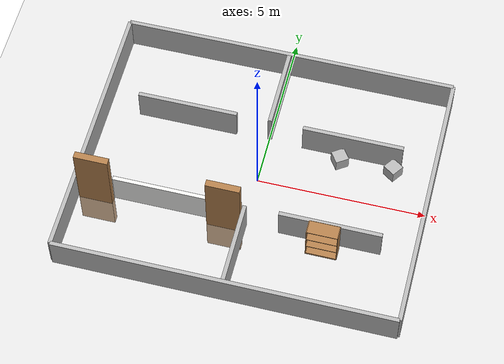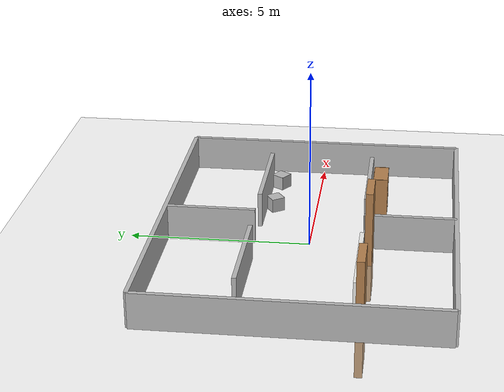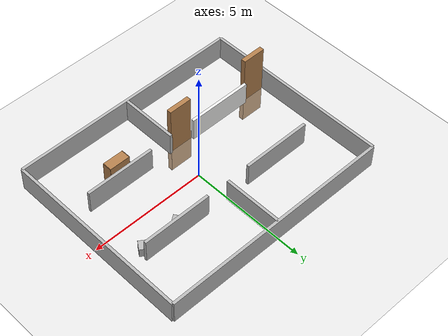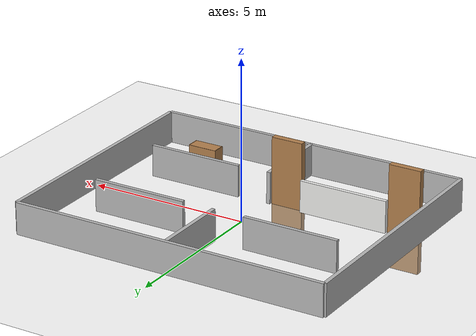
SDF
<sdf version="1.7">
 <world name="house_v1">
  <light name="sun" type="directional">
   <pose>0 0 10 0 -0 0</pose>
   <diffuse>0.8 0.8 0.8 1</diffuse>
   <specular>0.2 0.2 0.2 1</specular>
   <attenuation>
    <range>1000</range>
    <constant>0.9</constant>
    <linear>0.01</linear>
    <quadratic>0.001</quadratic>
   </attenuation>
   <direction>-0.5 0.1 -0.9</direction>
   <spot><inner_angle>0</inner_angle><outer_angle>0</outer_angle><falloff>0</falloff></spot>
  </light>
  <model name="ground_plane">
   <static>1</static>
   <link name="link">
    <collision name="collision">
     <geometry><plane><normal>0 0 1</normal><size>100 100</size></plane></geometry>
     <surface>
      <contact><collide_bitmask>65535</collide_bitmask></contact>
      <friction><ode><mu>100</mu><mu2>50</mu2></ode></friction>
     </surface>
    </collision>
    <visual name="visual">
     <cast_shadows>0</cast_shadows>
     <geometry><plane><normal>0 0 1</normal><size>100 100</size></plane></geometry>
     <material>
      <script><uri>file://media/materials/scripts/gazebo.material</uri><name>Gazebo/Grey</name></script>
     </material>
    </visual>
   </link>
  </model>
  <model name="outer_north">
   <static>1</static>
   <pose>0 4 0.5 0 -0 0</pose>
   <link name="link">
    <collision name="collision"><geometry><box><size>10 0.12 1</size></box></geometry></collision>
    <visual name="visual"><geometry><box><size>10 0.12 1</size></box></geometry></visual>
   </link>
  </model>
  <model name="outer_south">
   <static>1</static>
   <pose>0 -4 0.5 0 -0 0</pose>
   <link name="link">
    <collision name="collision"><geometry><box><size>10 0.12 1</size></box></geometry></collision>
    <visual name="visual"><geometry><box><size>10 0.12 1</size></box></geometry></visual>
   </link>
  </model>
  <model name="outer_east">
   <static>1</static>
   <pose>5 0 0.5 0 -0 0</pose>
   <link name="link">
    <collision name="collision"><geometry><box><size>0.12 8 1</size></box></geometry></collision>
    <visual name="visual"><geometry><box><size>0.12 8 1</size></box></geometry></visual>
   </link>
  </model>
  <model name="outer_west">
   <static>1</static>
   <pose>-5 0 0.5 0 -0 0</pose>
   <link name="link">
    <collision name="collision"><geometry><box><size>0.12 8 1</size></box></geometry></collision>
    <visual name="visual"><geometry><box><size>0.12 8 1</size></box></geometry></visual>
   </link>
  </model>
  <model name="inner_north_left">
   <static>1</static>
   <pose>-2.5 1.5 0.5 0 -0 0</pose>
   <link name="link">
    <collision name="collision"><geometry><box><size>3 0.12 1</size></box></geometry></collision>
    <visual name="visual"><geometry><box><size>3 0.12 1</size></box></geometry></visual>
   </link>
  </model>
  <model name="inner_north_right">
   <static>1</static>
   <pose>2.5 1.5 0.5 0 -0 0</pose>
   <link name="link">
    <collision name="collision"><geometry><box><size>3 0.12 1</size></box></geometry></collision>
    <visual name="visual"><geometry><box><size>3 0.12 1</size></box></geometry></visual>
   </link>
  </model>
  <model name="inner_south_right">
   <static>1</static>
   <pose>2.5 -1.5 0.5 0 -0 0</pose>
   <link name="link">
    <collision name="collision"><geometry><box><size>3 0.12 1</size></box></geometry></collision>
    <visual name="visual"><geometry><box><size>3 0.12 1</size></box></geometry></visual>
   </link>
  </model>
  <model name="inner_center_top">
   <static>1</static>
   <pose>0 2.75 0.5 0 -0 0</pose>
   <link name="link">
    <collision name="collision"><geometry><box><size>0.12 2.5 1</size></box></geometry></collision>
    <visual name="visual"><geometry><box><size>0.12 2.5 1</size></box></geometry></visual>
   </link>
  </model>
  <model name="inner_center_bottom">
   <static>1</static>
   <pose>0 -2.75 0.5 0 -0 0</pose>
   <link name="link">
    <collision name="collision"><geometry><box><size>0.12 2.5 1</size></box></geometry></collision>
    <visual name="visual"><geometry><box><size>0.12 2.5 1</size></box></geometry></visual>
   </link>
  </model>
  <model name="chair_1">
   <static>1</static>
   <pose>2.2 1.2 0.2 0 -0 0.6</pose>
   <link name="link">
    <collision name="collision"><geometry><box><size>0.4 0.4 0.4</size></box></geometry></collision>
    <visual name="visual"><geometry><box><size>0.4 0.4 0.4</size></box></geometry></visual>
   </link>
  </model>
  <model name="chair_2">
   <static>1</static>
   <pose>3.8 1.2 0.2 0 0 -0.6</pose>
   <link name="link">
    <collision name="collision"><geometry><box><size>0.4 0.4 0.4</size></box></geometry></collision>
    <visual name="visual"><geometry><box><size>0.4 0.4 0.4</size></box></geometry></visual>
   </link>
  </model>
  <gravity>0 0 -9.8</gravity>
  <magnetic_field>6e-06 2.3e-05 -4.2e-05</magnetic_field>
  <atmosphere type="adiabatic"/>
  <physics type="ode">
   <max_step_size>0.001</max_step_size>
   <real_time_factor>1</real_time_factor>
   <real_time_update_rate>1000</real_time_update_rate>
  </physics>
  <scene><ambient>0.4 0.4 0.4 1</ambient><background>0.7 0.7 0.7 1</background><shadows>1</shadows></scene>
  <spherical_coordinates>
   <surface_model>EARTH_WGS84</surface_model>
   <latitude_deg>0</latitude_deg>
   <longitude_deg>0</longitude_deg>
   <elevation>0</elevation>
   <heading_deg>0</heading_deg>
  </spherical_coordinates>
  <model name="inner_south_left_0">
   <link name="link">
    <pose>0.051519 0 0 0 -0 0</pose>
    <inertial>
     <mass>1</mass>
     <inertia><ixx>1</ixx><ixy>0</ixy><ixz>0</ixz><iyy>1</iyy><iyz>0</iyz><izz>1</izz></inertia>
    </inertial>
    <visual name="visual">
     <geometry><box><size>2.8 0.12 1</size></box></geometry>
     <material>
      <shader type="pixel"><normal_map>__default__</normal_map></shader>
      <script><name>ModelPreview_25::link::visual_MATERIAL_</name><uri>__default__</uri></script>
      <ambient>0.933 0.933 0.925 1</ambient>
      <diffuse>0.933 0.933 0.925 1</diffuse>
      <specular>0.933 0.933 0.925 1</specular>
      <emissive>0 0 0 1</emissive>
     </material>
    </visual>
    <collision name="collision">
     <geometry><box><size>3 0.12 1</size></box></geometry>
     <surface>
      <friction>
       <ode><mu>1</mu><mu2>1</mu2><fdir1>0 0 0</fdir1><slip1>0</slip1><slip2>0</slip2></ode>
       <torsional>
        <coefficient>1</coefficient>
        <patch_radius>0</patch_radius>
        <surface_radius>0</surface_radius>
        <use_patch_radius>1</use_patch_radius>
        <ode><slip>0</slip></ode>
       </torsional>
      </friction>
      <bounce><restitution_coefficient>0</restitution_coefficient><threshold>1e+06</threshold></bounce>
      <contact>
       <collide_without_contact>0</collide_without_contact>
       <collide_without_contact_bitmask>1</collide_without_contact_bitmask>
       <collide_bitmask>1</collide_bitmask>
       <ode>
        <soft_cfm>0</soft_cfm>
        <soft_erp>0.2</soft_erp>
        <kp>1e+13</kp>
        <kd>1</kd>
        <max_vel>0.01</max_vel>
        <min_depth>0</min_depth>
       </ode>
       <bullet>
        <split_impulse>1</split_impulse>
        <split_impulse_penetration_threshold>-0.01</split_impulse_penetration_threshold>
        <soft_cfm>0</soft_cfm>
        <soft_erp>0.2</soft_erp>
        <kp>1e+13</kp>
        <kd>1</kd>
       </bullet>
      </contact>
     </surface>
    </collision>
   </link>
   <static>1</static>
   <pose>-2.5534 -1.50675 0.5 0 -0 0</pose>
  </model>
  <model name="unit_box">
   <link name="link">
    <inertial>
     <mass>1</mass>
     <inertia>
      <ixx>0.166667</ixx>
      <ixy>0</ixy>
      <ixz>0</ixz>
      <iyy>0.166667</iyy>
      <iyz>0</iyz>
      <izz>0.166667</izz>
     </inertia>
    </inertial>
    <pose>0.001519 -0.93195 0 0 -0 0</pose>
    <visual name="visual">
     <geometry><box><size>1 0.2 3.2</size></box></geometry>
     <material>
      <script><name>Gazebo/Wood</name><uri>file://media/materials/scripts/gazebo.material</uri></script>
      <shader type="pixel"><normal_map>__default__</normal_map></shader>
      <ambient>0.3 0.3 0.3 1</ambient>
      <diffuse>0.7 0.7 0.7 1</diffuse>
      <specular>0.01 0.01 0.01 1</specular>
      <emissive>0 0 0 1</emissive>
     </material>
    </visual>
    <collision name="collision">
     <geometry><box><size>1 0.2 3.2</size></box></geometry>
     <surface>
      <friction>
       <ode><mu>1</mu><mu2>1</mu2><fdir1>0 0 0</fdir1><slip1>0</slip1><slip2>0</slip2></ode>
       <torsional>
        <coefficient>1</coefficient>
        <patch_radius>0</patch_radius>
        <surface_radius>0</surface_radius>
        <use_patch_radius>1</use_patch_radius>
        <ode><slip>0</slip></ode>
       </torsional>
      </friction>
      <bounce><restitution_coefficient>0</restitution_coefficient><threshold>1e+06</threshold></bounce>
      <contact>
       <collide_without_contact>0</collide_without_contact>
       <collide_without_contact_bitmask>1</collide_without_contact_bitmask>
       <collide_bitmask>1</collide_bitmask>
       <ode>
        <soft_cfm>0</soft_cfm>
        <soft_erp>0.2</soft_erp>
        <kp>1e+13</kp>
        <kd>1</kd>
        <max_vel>0.01</max_vel>
        <min_depth>0</min_depth>
       </ode>
       <bullet>
        <split_impulse>1</split_impulse>
        <split_impulse_penetration_threshold>-0.01</split_impulse_penetration_threshold>
        <soft_cfm>0</soft_cfm>
        <soft_erp>0.2</soft_erp>
        <kp>1e+13</kp>
        <kd>1</kd>
       </bullet>
      </contact>
     </surface>
    </collision>
   </link>
   <static>1</static>
   <pose>-0.573577 -0.743162 0.5 0 -0 0</pose>
  </model>
  <model name="unit_box_clone">
   <link name="link">
    <inertial>
     <mass>1</mass>
     <inertia>
      <ixx>0.166667</ixx>
      <ixy>0</ixy>
      <ixz>0</ixz>
      <iyy>0.166667</iyy>
      <iyz>0</iyz>
      <izz>0.166667</izz>
     </inertia>
    </inertial>
    <pose>0.001519 -0.93195 0 0 -0 0</pose>
    <visual name="visual">
     <geometry><box><size>1 0.2 3.2</size></box></geometry>
     <material>
      <script><name>Gazebo/Wood</name><uri>file://media/materials/scripts/gazebo.material</uri></script>
      <shader type="pixel"><normal_map>__default__</normal_map></shader>
      <ambient>0.3 0.3 0.3 1</ambient>
      <diffuse>0.7 0.7 0.7 1</diffuse>
      <specular>0.01 0.01 0.01 1</specular>
      <emissive>0 0 0 1</emissive>
     </material>
    </visual>
    <collision name="collision">
     <geometry><box><size>1 0.2 3.2</size></box></geometry>
     <surface>
      <friction>
       <ode><mu>1</mu><mu2>1</mu2><fdir1>0 0 0</fdir1><slip1>0</slip1><slip2>0</slip2></ode>
       <torsional>
        <coefficient>1</coefficient>
        <patch_radius>0</patch_radius>
        <surface_radius>0</surface_radius>
        <use_patch_radius>1</use_patch_radius>
        <ode><slip>0</slip></ode>
       </torsional>
      </friction>
      <bounce><restitution_coefficient>0</restitution_coefficient><threshold>1e+06</threshold></bounce>
      <contact>
       <collide_without_contact>0</collide_without_contact>
       <collide_without_contact_bitmask>1</collide_without_contact_bitmask>
       <collide_bitmask>1</collide_bitmask>
       <ode>
        <soft_cfm>0</soft_cfm>
        <soft_erp>0.2</soft_erp>
        <kp>1e+13</kp>
        <kd>1</kd>
        <max_vel>0.01</max_vel>
        <min_depth>0</min_depth>
       </ode>
       <bullet>
        <split_impulse>1</split_impulse>
        <split_impulse_penetration_threshold>-0.01</split_impulse_penetration_threshold>
        <soft_cfm>0</soft_cfm>
        <soft_erp>0.2</soft_erp>
        <kp>1e+13</kp>
        <kd>1</kd>
       </bullet>
      </contact>
     </surface>
    </collision>
   </link>
   <static>1</static>
   <pose>-4.410185 -0.744519 0.5 0 -0 0</pose>
  </model>
  <model name="bookshelf">
   <link name="link">
    <inertial><mass>1</mass></inertial>
    <visual name="visual1">
     <pose>0 0.005 0.6 0 -0 0</pose>
     <geometry><box><size>0.9 0.01 1.2</size></box></geometry>
     <material>
      <script><uri>file://media/materials/scripts/gazebo.material</uri><name>Gazebo/Wood</name></script>
      <shader type="pixel"/>
     </material>
    </visual>
    <visual name="visual2">
     <pose>0.45 -0.195 0.6 0 -0 0</pose>
     <geometry><box><size>0.02 0.4 1.2</size></box></geometry>
     <material>
      <script><uri>file://media/materials/scripts/gazebo.material</uri><name>Gazebo/Wood</name></script>
      <shader type="pixel"/>
     </material>
    </visual>
    <visual name="visual3">
     <pose>-0.45 -0.195 0.6 0 -0 0</pose>
     <geometry><box><size>0.02 0.4 1.2</size></box></geometry>
     <material>
      <script><uri>file://media/materials/scripts/gazebo.material</uri><name>Gazebo/Wood</name></script>
      <shader type="pixel"/>
     </material>
    </visual>
    <visual name="visual4">
     <pose>0 -0.195 0.03 0 -0 0</pose>
     <geometry><box><size>0.88 0.4 0.06</size></box></geometry>
     <material>
      <script><uri>file://media/materials/scripts/gazebo.material</uri><name>Gazebo/Wood</name></script>
      <shader type="pixel"/>
     </material>
    </visual>
    <visual name="visual5">
     <pose>0 -0.195 1.19 0 -0 0</pose>
     <geometry><box><size>0.88 0.4 0.02</size></box></geometry>
     <material>
      <script><uri>file://media/materials/scripts/gazebo.material</uri><name>Gazebo/Wood</name></script>
      <shader type="pixel"/>
     </material>
    </visual>
    <visual name="visual6">
     <pose>0 -0.195 0.43 0 -0 0</pose>
     <geometry><box><size>0.88 0.4 0.02</size></box></geometry>
     <material>
      <script><uri>file://media/materials/scripts/gazebo.material</uri><name>Gazebo/Wood</name></script>
      <shader type="pixel"/>
     </material>
    </visual>
    <visual name="visual7">
     <pose>0 -0.195 0.8 0 -0 0</pose>
     <geometry><box><size>0.88 0.4 0.02</size></box></geometry>
     <material>
      <script><uri>file://media/materials/scripts/gazebo.material</uri><name>Gazebo/Wood</name></script>
      <shader type="pixel"/>
     </material>
    </visual>
    <collision name="back">
     <pose>0 0.005 0.6 0 -0 0</pose>
     <geometry><box><size>0.9 0.01 1.2</size></box></geometry>
     <surface>
      <friction>
       <ode><mu>1</mu><mu2>1</mu2><fdir1>0 0 0</fdir1><slip1>0</slip1><slip2>0</slip2></ode>
       <torsional>
        <coefficient>1</coefficient>
        <patch_radius>0</patch_radius>
        <surface_radius>0</surface_radius>
        <use_patch_radius>1</use_patch_radius>
        <ode><slip>0</slip></ode>
       </torsional>
      </friction>
      <bounce><restitution_coefficient>0</restitution_coefficient><threshold>1e+06</threshold></bounce>
      <contact>
       <collide_without_contact>0</collide_without_contact>
       <collide_without_contact_bitmask>1</collide_without_contact_bitmask>
       <collide_bitmask>1</collide_bitmask>
       <ode>
        <soft_cfm>0</soft_cfm>
        <soft_erp>0.2</soft_erp>
        <kp>1e+13</kp>
        <kd>1</kd>
        <max_vel>0.01</max_vel>
        <min_depth>0</min_depth>
       </ode>
       <bullet>
        <split_impulse>1</split_impulse>
        <split_impulse_penetration_threshold>-0.01</split_impulse_penetration_threshold>
        <soft_cfm>0</soft_cfm>
        <soft_erp>0.2</soft_erp>
        <kp>1e+13</kp>
        <kd>1</kd>
       </bullet>
      </contact>
     </surface>
    </collision>
    <collision name="left_side">
     <pose>0.45 -0.195 0.6 0 -0 0</pose>
     <geometry><box><size>0.02 0.4 1.2</size></box></geometry>
     <surface>
      <friction>
       <ode><mu>1</mu><mu2>1</mu2><fdir1>0 0 0</fdir1><slip1>0</slip1><slip2>0</slip2></ode>
       <torsional>
        <coefficient>1</coefficient>
        <patch_radius>0</patch_radius>
        <surface_radius>0</surface_radius>
        <use_patch_radius>1</use_patch_radius>
        <ode><slip>0</slip></ode>
       </torsional>
      </friction>
      <bounce><restitution_coefficient>0</restitution_coefficient><threshold>1e+06</threshold></bounce>
      <contact>
       <collide_without_contact>0</collide_without_contact>
       <collide_without_contact_bitmask>1</collide_without_contact_bitmask>
       <collide_bitmask>1</collide_bitmask>
       <ode>
        <soft_cfm>0</soft_cfm>
        <soft_erp>0.2</soft_erp>
        <kp>1e+13</kp>
        <kd>1</kd>
        <max_vel>0.01</max_vel>
        <min_depth>0</min_depth>
       </ode>
       <bullet>
        <split_impulse>1</split_impulse>
        <split_impulse_penetration_threshold>-0.01</split_impulse_penetration_threshold>
        <soft_cfm>0</soft_cfm>
        <soft_erp>0.2</soft_erp>
        <kp>1e+13</kp>
        <kd>1</kd>
       </bullet>
      </contact>
     </surface>
    </collision>
    <collision name="right_side">
     <pose>-0.45 -0.195 0.6 0 -0 0</pose>
     <geometry><box><size>0.02 0.4 1.2</size></box></geometry>
     <surface>
      <friction>
       <ode><mu>1</mu><mu2>1</mu2><fdir1>0 0 0</fdir1><slip1>0</slip1><slip2>0</slip2></ode>
       <torsional>
        <coefficient>1</coefficient>
        <patch_radius>0</patch_radius>
        <surface_radius>0</surface_radius>
        <use_patch_radius>1</use_patch_radius>
        <ode><slip>0</slip></ode>
       </torsional>
      </friction>
      <bounce><restitution_coefficient>0</restitution_coefficient><threshold>1e+06</threshold></bounce>
      <contact>
       <collide_without_contact>0</collide_without_contact>
       <collide_without_contact_bitmask>1</collide_without_contact_bitmask>
       <collide_bitmask>1</collide_bitmask>
       <ode>
        <soft_cfm>0</soft_cfm>
        <soft_erp>0.2</soft_erp>
        <kp>1e+13</kp>
        <kd>1</kd>
        <max_vel>0.01</max_vel>
        <min_depth>0</min_depth>
       </ode>
       <bullet>
        <split_impulse>1</split_impulse>
        <split_impulse_penetration_threshold>-0.01</split_impulse_penetration_threshold>
        <soft_cfm>0</soft_cfm>
        <soft_erp>0.2</soft_erp>
        <kp>1e+13</kp>
        <kd>1</kd>
       </bullet>
      </contact>
     </surface>
    </collision>
    <collision name="bottom">
     <pose>0 -0.195 0.03 0 -0 0</pose>
     <geometry><box><size>0.88 0.4 0.06</size></box></geometry>
     <surface>
      <friction>
       <ode><mu>1</mu><mu2>1</mu2><fdir1>0 0 0</fdir1><slip1>0</slip1><slip2>0</slip2></ode>
       <torsional>
        <coefficient>1</coefficient>
        <patch_radius>0</patch_radius>
        <surface_radius>0</surface_radius>
        <use_patch_radius>1</use_patch_radius>
        <ode><slip>0</slip></ode>
       </torsional>
      </friction>
      <bounce><restitution_coefficient>0</restitution_coefficient><threshold>1e+06</threshold></bounce>
      <contact>
       <collide_without_contact>0</collide_without_contact>
       <collide_without_contact_bitmask>1</collide_without_contact_bitmask>
       <collide_bitmask>1</collide_bitmask>
       <ode>
        <soft_cfm>0</soft_cfm>
        <soft_erp>0.2</soft_erp>
        <kp>1e+13</kp>
        <kd>1</kd>
        <max_vel>0.01</max_vel>
        <min_depth>0</min_depth>
       </ode>
       <bullet>
        <split_impulse>1</split_impulse>
        <split_impulse_penetration_threshold>-0.01</split_impulse_penetration_threshold>
        <soft_cfm>0</soft_cfm>
        <soft_erp>0.2</soft_erp>
        <kp>1e+13</kp>
        <kd>1</kd>
       </bullet>
      </contact>
     </surface>
    </collision>
    <collision name="low_shelf">
     <pose>0 -0.195 0.43 0 -0 0</pose>
     <geometry><box><size>0.88 0.4 0.02</size></box></geometry>
     <surface>
      <friction>
       <ode><mu>1</mu><mu2>1</mu2><fdir1>0 0 0</fdir1><slip1>0</slip1><slip2>0</slip2></ode>
       <torsional>
        <coefficient>1</coefficient>
        <patch_radius>0</patch_radius>
        <surface_radius>0</surface_radius>
        <use_patch_radius>1</use_patch_radius>
        <ode><slip>0</slip></ode>
       </torsional>
      </friction>
      <bounce><restitution_coefficient>0</restitution_coefficient><threshold>1e+06</threshold></bounce>
      <contact>
       <collide_without_contact>0</collide_without_contact>
       <collide_without_contact_bitmask>1</collide_without_contact_bitmask>
       <collide_bitmask>1</collide_bitmask>
       <ode>
        <soft_cfm>0</soft_cfm>
        <soft_erp>0.2</soft_erp>
        <kp>1e+13</kp>
        <kd>1</kd>
        <max_vel>0.01</max_vel>
        <min_depth>0</min_depth>
       </ode>
       <bullet>
        <split_impulse>1</split_impulse>
        <split_impulse_penetration_threshold>-0.01</split_impulse_penetration_threshold>
        <soft_cfm>0</soft_cfm>
        <soft_erp>0.2</soft_erp>
        <kp>1e+13</kp>
        <kd>1</kd>
       </bullet>
      </contact>
     </surface>
    </collision>
    <collision name="top">
     <pose>0 -0.195 1.19 0 -0 0</pose>
     <geometry><box><size>0.88 0.4 0.02</size></box></geometry>
     <surface>
      <friction>
       <ode><mu>1</mu><mu2>1</mu2><fdir1>0 0 0</fdir1><slip1>0</slip1><slip2>0</slip2></ode>
       <torsional>
        <coefficient>1</coefficient>
        <patch_radius>0</patch_radius>
        <surface_radius>0</surface_radius>
        <use_patch_radius>1</use_patch_radius>
        <ode><slip>0</slip></ode>
       </torsional>
      </friction>
      <bounce><restitution_coefficient>0</restitution_coefficient><threshold>1e+06</threshold></bounce>
      <contact>
       <collide_without_contact>0</collide_without_contact>
       <collide_without_contact_bitmask>1</collide_without_contact_bitmask>
       <collide_bitmask>1</collide_bitmask>
       <ode>
        <soft_cfm>0</soft_cfm>
        <soft_erp>0.2</soft_erp>
        <kp>1e+13</kp>
        <kd>1</kd>
        <max_vel>0.01</max_vel>
        <min_depth>0</min_depth>
       </ode>
       <bullet>
        <split_impulse>1</split_impulse>
        <split_impulse_penetration_threshold>-0.01</split_impulse_penetration_threshold>
        <soft_cfm>0</soft_cfm>
        <soft_erp>0.2</soft_erp>
        <kp>1e+13</kp>
        <kd>1</kd>
       </bullet>
      </contact>
     </surface>
    </collision>
    <collision name="high_shelf">
     <pose>0 -0.195 0.8 0 -0 0</pose>
     <geometry><box><size>0.88 0.4 0.02</size></box></geometry>
     <surface>
      <friction>
       <ode><mu>1</mu><mu2>1</mu2><fdir1>0 0 0</fdir1><slip1>0</slip1><slip2>0</slip2></ode>
       <torsional>
        <coefficient>1</coefficient>
        <patch_radius>0</patch_radius>
        <surface_radius>0</surface_radius>
        <use_patch_radius>1</use_patch_radius>
        <ode><slip>0</slip></ode>
       </torsional>
      </friction>
      <bounce><restitution_coefficient>0</restitution_coefficient><threshold>1e+06</threshold></bounce>
      <contact>
       <collide_without_contact>0</collide_without_contact>
       <collide_without_contact_bitmask>1</collide_without_contact_bitmask>
       <collide_bitmask>1</collide_bitmask>
       <ode>
        <soft_cfm>0</soft_cfm>
        <soft_erp>0.2</soft_erp>
        <kp>1e+13</kp>
        <kd>1</kd>
        <max_vel>0.01</max_vel>
        <min_depth>0</min_depth>
       </ode>
       <bullet>
        <split_impulse>1</split_impulse>
        <split_impulse_penetration_threshold>-0.01</split_impulse_penetration_threshold>
        <soft_cfm>0</soft_cfm>
        <soft_erp>0.2</soft_erp>
        <kp>1e+13</kp>
        <kd>1</kd>
       </bullet>
      </contact>
     </surface>
    </collision>
   </link>
   <static>1</static>
   <pose>2.36674 -1.64875 0 0 -0 0</pose>
  </model>
 </world>
</sdf>
